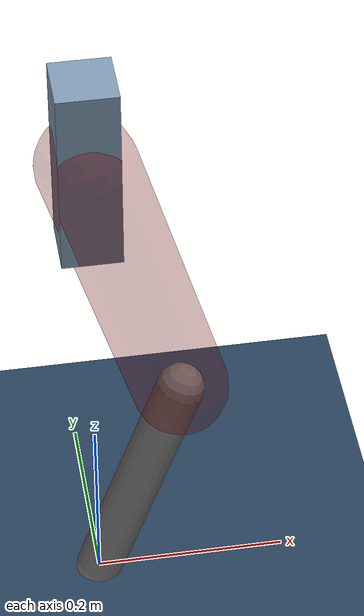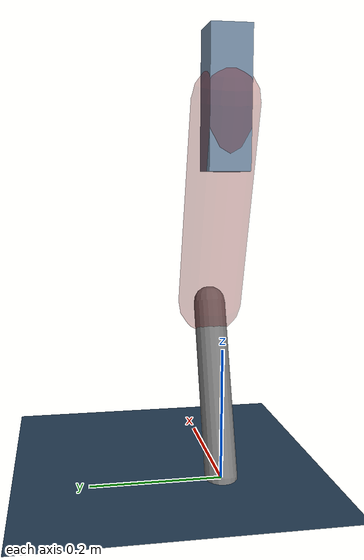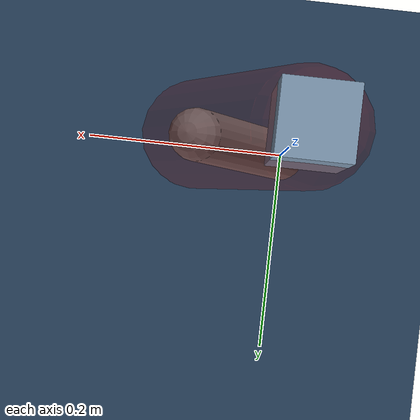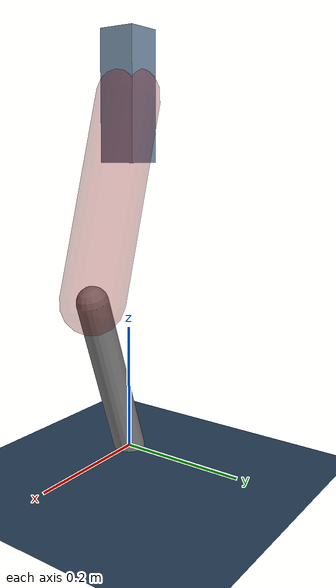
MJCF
<mujoco model="Hopper2D">
	<compiler inertiafromgeom="true" angle="radian" />
	<option timestep="0.001" integrator="implicit" cone="elliptic" solver="Newton" tolerance="1e-10" />

	<default>
		<geom contype="1" conaffinity="1" condim="3" friction="2 0.005 0.0001" solref="0.005 1" />
		<joint limited="true" damping="0.1" />
	</default>

	<asset>
		<texture name="skybox" type="skybox" builtin="gradient" rgb1=".4 .6 .8" rgb2="0 0 0" width="800" height="800" />
		<texture name="grid" type="2d" builtin="checker" rgb1=".1 .2 .3" rgb2=".2 .3 .4" width="300" height="300" mark="edge" markrgb=".2 .3 .4" />
		<material name="ground" texture="grid" texrepeat="1 1" texuniform="true" reflectance="0.1" />
		<material name="leg" rgba="0.5 0.6 0.7 1" />
	</asset>

	<worldbody>

		<geom name="floor" type="plane" size="5 5 0.25" material="ground" />

		<light directional="false" diffuse="0.8 0.8 0.8" specular="0.3 0.3 0.3" pos="0 0 2" dir="0 0 -1" />
		<light mode="targetbodycom" target="base" directional="false" diffuse="0.8 0.8 0.8" specular="0.3 0.3 0.3" pos="0 0 2" dir="0 0 -1" />

		<camera name="fixed" pos="0 -2 1" xyaxes="1 0 0 0 0 1" />
		<camera name="tracking" mode="trackcom" pos="0 -3 1" />

		<body name="root" pos="0 0 0.5632495494156976">
			<joint name="slide_x" type="slide" axis="1 0 0" range="-100 100" />
			<joint name="slide_z" type="slide" axis="0 0 1" range="0 10" />

			<body name="base" pos="0 0 0">
				<geom name="torso" type="box" size="0.03 0.03 0.1" mass="5.256" material="leg" />

				<body name="link1" pos="0 0 0" euler="0 1.2868908333265199 0">
					<joint type="hinge" axis="0 -1 0" pos="0 0 0" name="hinge1" limited="true" range="-3.14 3.14" stiffness="0" damping="0.1" />
					<geom name="thigh" type="capsule" fromto="0 0 0 0.3191209459238906 0 0" size="0.05" rgba="0.5 0 0 0.3" mass="1.0408265539945045" />

					<body name="link2" pos="0.3191209459238906 0 0" euler="0 0.6187474876953005 0">
						<joint type="hinge" axis="0 -1 0" pos="0 0 0" name="hinge2" limited="true" range="-3.14 3.14" stiffness="0" damping="0.1" />
						<geom name="shank" type="capsule" fromto="0 0 0 0.2720102334739043 0 0" size="0.025" mass="0.4606081867791234" />

					</body>
				</body>
			</body>
		</body>
	</worldbody>

	<actuator>
		<motor name="torque1" joint="hinge1" ctrlrange="-360.64380312969615 360.64380312969615" ctrllimited="true" gear="1" />
		<motor name="torque2" joint="hinge2" ctrlrange="-96.33678070651045 96.33678070651045" ctrllimited="true" gear="1" />
	</actuator>
</mujoco>
